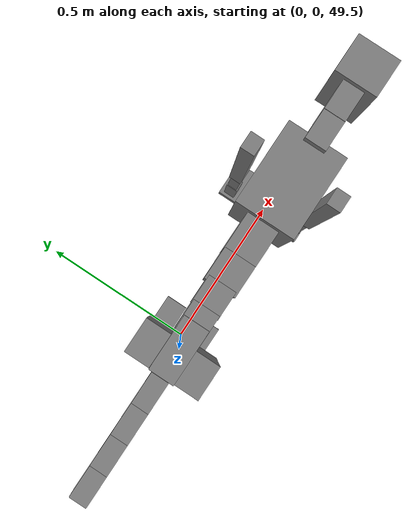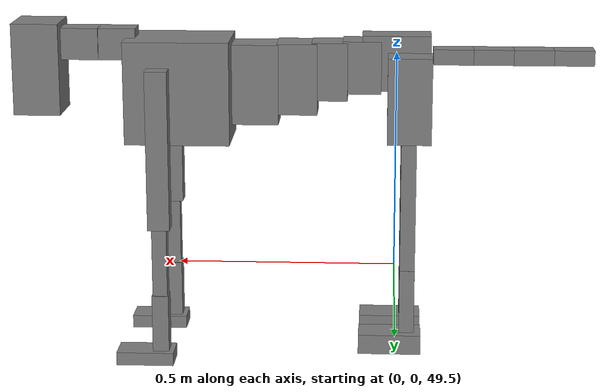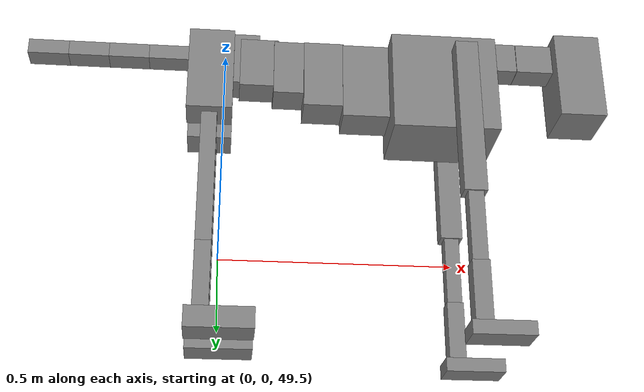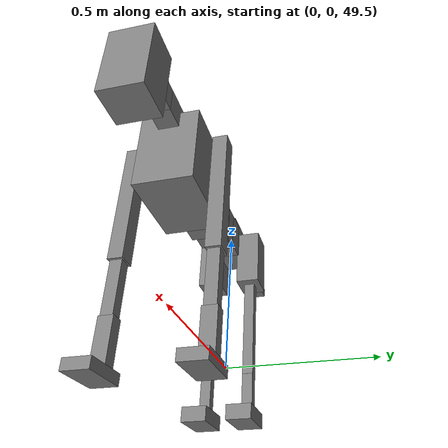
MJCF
<mujoco model="dog">

    <default>
        <joint armature="0.02" stiffness="1" damping="0.2" limited="true"/>
        <geom condim="3" friction="1 0.05 0.05" margin="0.01"/>
        <motor ctrllimited="true" ctrlrange="-1.0 1.0" forcelimited="true" gear="50"/>
    </default>

    <compiler inertiafromgeom="true" angle="radian"/>

    <option timestep="0.016" iterations="50" tolerance="1e-10" solver="Newton" jacobian="dense" cone="pyramidal"/>

    <size nconmax="20000" njmax="60000" nstack="5000000"/>
    <visual>
        <map force="0.1" zfar="30"/>
        <rgba haze="0.15 0.25 0.35 1"/>
        <quality shadowsize="2048"/>
        <global offwidth="800" offheight="800"/>
    </visual>

    <asset>
        <texture type="skybox" builtin="gradient" rgb1="0.3 0.5 0.7" rgb2="0 0 0" width="512" height="512"/>
        <texture name="texplane" type="2d" builtin="checker" rgb1=".2 .3 .4" rgb2=".1 0.15 0.2" width="512" height="512"
                 mark="cross" markrgb=".8 .8 .8"/>
        <texture name="texgeom" type="cube" builtin="flat" mark="cross" width="127" height="1278" rgb1="0.8 0.6 0.4"
                 rgb2="0.8 0.6 0.4" markrgb="1 1 1" random="0.01"/>

        <material name="matplane" reflectance="0.3" texture="texplane" texrepeat="1 1" texuniform="true"/>
        <material name="matgeom" texture="texgeom" texuniform="true" rgba="0.8 0.6 .4 1"/>
    </asset>

    <worldbody>
        <geom name="floor" pos="0 0 0" size="0 0 .25" type="plane" material="matplane" condim="3"/>

        <light directional="false" diffuse=".2 .2 .2" specular="0 0 0" pos="0 0 5" dir="0 0 -1" castshadow="false"/>
        <light mode="targetbodycom" target="torso" directional="false" diffuse=".8 .8 .8" specular="0.3 0.3 0.3"
               pos="0 0 4.0" dir="0 0 -1"/>

        <body name="root" pos="0 0 50">
            <freejoint name="root_1"/>
            <geom type="box" pos="0 0 -0.02" size="0.0774  0.0358  0.063" density="2030"/>

            <body name="spine1" pos="0.054 0 0">
                <joint name="spine1_y" axis="0 1 0" range="0 0.7" limited="true"/>
                <geom type="box" pos="0.02375 0 -0.03" size="0.04375  0.0375  0.05985" density="2030"/>

                <body name="spine2" pos="0.0612 0 0">
                    <joint name="spine2_y" axis="0 1 0" range="-0.15 0.15" limited="true"/>
                    <geom type="box" pos="0.03555  0  -0.04" size="0.04055  0.039  0.06615" density="2030"/>

                    <body name="spine3" pos="0.0730 0 0">
                        <joint name="spine3_y" axis="0 1 0" range="-0.15 0.15" limited="true"/>
                        <geom type="box" pos="0.03555  0  -0.057" size="0.04555  0.0445  0.081" density="2030"/>

                        <body name="spine4" pos="0.0780 0 0">
                            <joint name="spine4_y" axis="0 1 0" range="-0.15 0.15" limited="true"/>
                            <geom type="box" pos="0.05265  0  -0.07" size="0.05265  0.045  0.09135" density="2030"/>

                            <body name="torso" pos="0.1082 0 0">
                                <joint name="torso_y" axis="0 1 0" range="-0.15 0.15" limited="true"/>
                                <geom type="box" pos="0.11925  0  -0.085" size="0.11925  0.085  0.11745"
                                      density="2030"/>

                                <body name="neck1" pos="0.2160  0   0.0180">
                                    <joint name="neck1_y" axis="0 1 0" range="-1.2  -1" limited="true"/>
                                    <geom type="box" pos="0.0423  0  0" size="0.0423  0.03  0.036" density="2325"/>

                                    <body name="neck2" pos="0.0853  0  0">
                                        <joint name="neck2_y" axis="0 1 0" range="0.1  0" limited="true"/>
                                        <geom type="box" pos="0.0423  0  0" size="0.0423  0.03  0.036" density="2325"/>

                                        <body name="head" pos="0.0853  0  0">
                                            <joint name="head_y" axis="0 1 0" range="-0.3  -0.2" limited="true"/>
                                            <geom type="box" pos="0.0531  0  -0.055" size="0.0531  0.06  0.1044"
                                                  density="4030"/>

                                        </body>
                                    </body>
                                </body>

                                <body name="front_shoulder" pos="0.156  0   -0.0480">
                                    <joint name="front_shoulder_y" axis="0 1 0" range="-1 1.5" limited="true"/>
                                    <geom type="box" pos="0 0.13 -0.1548" size="0.0248  0.0212  0.1815" density="1158"/>
                                    <geom type="box" pos="0 -0.13 -0.1548" size="0.0248  0.0212  0.1815"
                                          density="1158"/>

                                    <body name="front_elbow" pos="0  0  -0.3096">
                                        <joint name="front_elbow_y" axis="0 1 0" range="-2 0" limited="true"/>
                                        <geom type="box" pos="0 0.13 -0.0972" size="0.0166  0.0170  0.0972"
                                              density="1081"/>
                                        <geom type="box" pos="0 -0.13 -0.0972" size="0.0166  0.0170  0.0972"
                                              density="1081"/>

                                        <body name="front_wrist" pos="0  0  -0.1944">
                                            <joint name="front_wrist_y" axis="0 1 0" range="-0.2 0" limited="true"/>
                                            <geom type="box" pos="0 0.13 -0.0668" size="0.0186  0.0207  0.0799"
                                                  density="1664"/>
                                            <geom type="box" pos="0 -0.13 -0.0668" size="0.0186  0.0207  0.0799"
                                                  density="1664"/>

                                            <body name="front_finger_end" pos="0  0  -0.1335">
                                                <joint name="front_finger_y" axis="0 1 0" range="-0.4 1"
                                                       limited="true"/>
                                                <geom type="box" pos="0.0354  0.13  -0.0000"
                                                      size="0.0650  0.0354  0.0150" density="1515"/>
                                                <geom type="box" pos="0.0354  -0.13  -0.0000"
                                                      size="0.0650  0.0354  0.0150" density="1515"/>

                                            </body>

                                        </body>
                                    </body>
                                </body>

                            </body>
                        </body>
                    </body>
                </body>
            </body>

            <body name="back_hip" pos="-0.03 0 -0.018">
                <joint name="back_hip_y" axis="0 1 0" range="-1.5 0.3" limited="true"/>
                <geom type="box" pos="0 0.07 -0.0748" size="0.0495  0.0388  0.0976" density="1154"/>
                <geom type="box" pos="0 -0.07 -0.0748" size="0.0495  0.0388  0.0976" density="1154"/>

                <body name="back_knee" pos="0  0  -0.1496">
                    <joint name="back_knee_y" axis="0 1 0" range="0 2.8" limited="true"/>
                    <geom type="box" pos="0 0.07 -0.1670" size="0.0172  0.0170  0.1825" density="1227"/>
                    <geom type="box" pos="0 -0.07 -0.1670" size="0.0172  0.0170  0.1825" density="1227"/>

                    <body name="back_ankle" pos="0  0  -0.3340">
                        <joint name="back_ankle_y" axis="0 1 0" range="-2.2 0" limited="true"/>
                        <geom type="box" pos="0 0.07 -0.0760" size="0.0171  0.0171  0.0873" density="1284"/>
                        <geom type="box" pos="0 -0.07 -0.0760" size="0.0171  0.0171  0.0873" density="1284"/>

                        <body name="back_toe_end" pos="0  0  -0.1520">
                            <joint name="back_toe_y" axis="0 1 0" range="-0.4 1" limited="true"/>
                            <geom type="box" pos="0.0389  0.07  -0.0076" size="0.0714  0.0389  0.0226" density="1515"/>
                            <geom type="box" pos="0.0389  -0.07  -0.0076" size="0.0714  0.0389  0.0226" density="1515"/>

                        </body>
                    </body>
                </body>
            </body>

            <body name="tail1" pos="-0.074 0 -0.006">
                <joint name="tail1_y" axis="0 1 0" range="-0.2 0.2" limited="true"/>
                <geom type="box" pos="-0.0536  0  0" size="0.045  0.025  0.0175" density="1587"/>

                <body name="tail2" pos="-0.09 0 0">
                    <joint name="tail2_y" axis="0 1 0" range="-0.2 0.2" limited="true"/>
                    <geom type="box" pos="-0.0536  0  0" size="0.045  0.025  0.0175" density="1587"/>

                    <body name="tail3" pos="-0.09 0 0">
                        <joint name="tail3_y" axis="0 1 0" range="-0.2 0.2" limited="true"/>
                        <geom type="box" pos="-0.0536  0  0" size="0.045  0.025  0.0175" density="1587"/>

                        <body name="tail4" pos="-0.09 0 0">
                            <joint name="tail4_y" axis="0 1 0" range="-0.2 0.2" limited="true"/>
                            <geom type="box" pos="-0.0536  0  0" size="0.045  0.025  0.0175" density="1587"/>

                        </body>
                    </body>
                </body>
            </body>
        </body>
    </worldbody>

    <actuator>
        <motor joint="spine1_y" forcerange="-150 150     "/>
        <motor joint="spine2_y" forcerange="-150 150     "/>
        <motor joint="spine3_y" forcerange="-150 150     "/>
        <motor joint="spine4_y" forcerange="-150 150     "/>
        <motor joint="torso_y" forcerange="-150 150     "/>
        <motor joint="neck1_y" forcerange="-100 100       "/>
        <motor joint="neck2_y" forcerange="-100 100       "/>
        <motor joint="head_y" forcerange="-150 150       "/>
        <motor joint="front_shoulder_y" forcerange="-118.30 123.07"/>
        <motor joint="front_elbow_y" forcerange="-120.89 102.85"/>
        <motor joint="front_wrist_y" forcerange="-108.96 56.38"/>
        <motor joint="front_finger_y" forcerange="-55.82 93.14"/>
        <motor joint="back_hip_y" forcerange="-327.32 390.29"/>
        <motor joint="back_knee_y" forcerange="-219.85 226.83"/>
        <motor joint="back_angle_y" forcerange="-61.67 112.26"/>
        <motor joint="back_toe_y" forcerange="-133.05 98.42"/>
        <motor joint="tail1_y" forcerange="-50 50     "/>
        <motor joint="tail2_y" forcerange="-50 50     "/>
        <motor joint="tail3_y" forcerange="-50 50     "/>
        <motor joint="tail4_y" forcerange="-50 50     "/>
    </actuator>
</mujoco>
